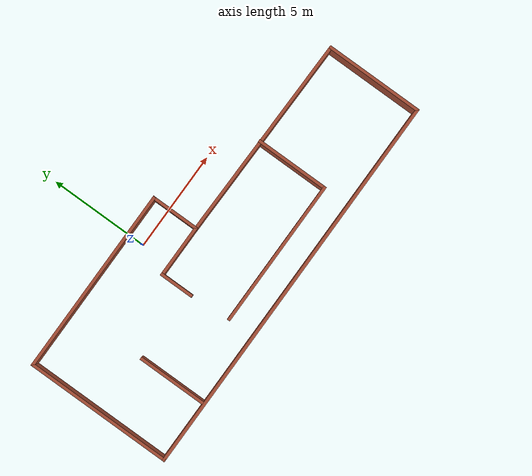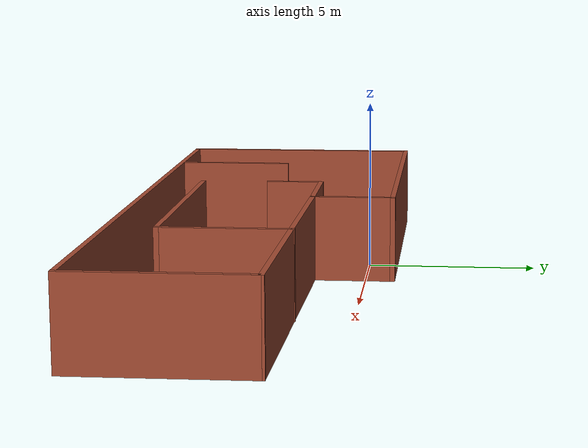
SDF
<?xml version='1.0'?>
<sdf version='1.6'>
  <model name='Hotel_3'>
    <pose frame=''>2.48055 -2.885 0 0 -0 0</pose>
    <link name='Wall_0'>
      <collision name='Wall_0_Collision'>
        <geometry>
          <box>
            <size>1.75 0.15 2.5</size>
          </box>
        </geometry>
        <pose frame=''>0 0 1.25 0 -0 0</pose>
      </collision>
      <visual name='Wall_0_Visual'>
        <pose frame=''>0 0 1.25 0 -0 0</pose>
        <geometry>
          <box>
            <size>1.75 0.15 2.5</size>
          </box>
        </geometry>
        <material>
          <script>
            <uri>file://media/materials/scripts/gazebo.material</uri>
            <name>Gazebo/Bricks</name>
          </script>
          <ambient>1 1 1 1</ambient>
        </material>
        <meta>
          <layer>0</layer>
        </meta>
      </visual>
      <pose frame=''>-3.05055 0.525 0 0 -0 1.5708</pose>
    </link>
    <link name='Wall_1'>
      <collision name='Wall_1_Collision'>
        <geometry>
          <box>
            <size>2.75 0.15 2.5</size>
          </box>
        </geometry>
        <pose frame=''>0 0 1.25 0 -0 0</pose>
      </collision>
      <visual name='Wall_1_Visual'>
        <pose frame=''>0 0 1.25 0 -0 0</pose>
        <geometry>
          <box>
            <size>2.75 0.15 2.5</size>
          </box>
        </geometry>
        <material>
          <script>
            <uri>file://media/materials/scripts/gazebo.material</uri>
            <name>Gazebo/Bricks</name>
          </script>
          <ambient>1 1 1 1</ambient>
        </material>
        <meta>
          <layer>0</layer>
        </meta>
      </visual>
      <pose frame=''>-1.75055 1.325 0 0 -0 0</pose>
    </link>
    <link name='Wall_10'>
      <collision name='Wall_10_Collision'>
        <geometry>
          <box>
            <size>3.75 0.15 2.5</size>
          </box>
        </geometry>
        <pose frame=''>0 0 1.25 0 -0 0</pose>
      </collision>
      <visual name='Wall_10_Visual'>
        <pose frame=''>0 0 1.25 0 -0 0</pose>
        <geometry>
          <box>
            <size>3.75 0.15 2.5</size>
          </box>
        </geometry>
        <material>
          <script>
            <uri>file://media/materials/scripts/gazebo.material</uri>
            <name>Gazebo/Bricks</name>
          </script>
          <ambient>1 1 1 1</ambient>
        </material>
        <meta>
          <layer>0</layer>
        </meta>
      </visual>
      <pose frame=''>4.45924 -0.530568 0 0 -0 -1.5708</pose>
    </link>
    <link name='Wall_11'>
      <collision name='Wall_11_Collision'>
        <geometry>
          <box>
            <size>7.5 0.15 2.5</size>
          </box>
        </geometry>
        <pose frame=''>0 0 1.25 0 -0 0</pose>
      </collision>
      <visual name='Wall_11_Visual'>
        <pose frame=''>0 0 1.25 0 -0 0</pose>
        <geometry>
          <box>
            <size>7.5 0.15 2.5</size>
          </box>
        </geometry>
        <material>
          <script>
            <uri>file://media/materials/scripts/gazebo.material</uri>
            <name>Gazebo/Bricks</name>
          </script>
          <ambient>1 1 1 1</ambient>
        </material>
        <meta>
          <layer>0</layer>
        </meta>
      </visual>
      <pose frame=''>0.784242 -2.33057 0 0 -0 3.14159</pose>
    </link>
    <link name='Wall_13'>
      <collision name='Wall_13_Collision'>
        <geometry>
          <box>
            <size>3.5 0.15 2.5</size>
          </box>
        </geometry>
        <pose frame=''>0 0 1.25 0 -0 0</pose>
      </collision>
      <visual name='Wall_13_Visual'>
        <pose frame=''>0 0 1.25 0 -0 0</pose>
        <geometry>
          <box>
            <size>3.5 0.15 2.5</size>
          </box>
        </geometry>
        <material>
          <script>
            <uri>file://media/materials/scripts/gazebo.material</uri>
            <name>Gazebo/Bricks</name>
          </script>
          <ambient>1 1 1 1</ambient>
        </material>
        <meta>
          <layer>0</layer>
        </meta>
      </visual>
      <pose frame=''>-6.68368 -1.85374 0 0 -0 -1.5708</pose>
    </link>
    <link name='Wall_3'>
      <collision name='Wall_3_Collision'>
        <geometry>
          <box>
            <size>2.5 0.15 2.5</size>
          </box>
        </geometry>
        <pose frame=''>0 0 1.25 0 -0 0</pose>
      </collision>
      <visual name='Wall_3_Visual'>
        <pose frame=''>0 0 1.25 0 -0 0</pose>
        <geometry>
          <box>
            <size>2.5 0.15 2.5</size>
          </box>
        </geometry>
        <material>
          <script>
            <uri>file://media/materials/scripts/gazebo.material</uri>
            <name>Gazebo/Bricks</name>
          </script>
          <ambient>1 1 1 1</ambient>
        </material>
        <meta>
          <layer>0</layer>
        </meta>
      </visual>
      <pose frame=''>-0.450545 2.5 0 0 -0 1.5708</pose>
    </link>
    <link name='Wall_4'>
      <collision name='Wall_4_Collision'>
        <geometry>
          <box>
            <size>9.5 0.15 2.5</size>
          </box>
        </geometry>
        <pose frame=''>0 0 1.25 0 -0 0</pose>
      </collision>
      <visual name='Wall_4_Visual'>
        <pose frame=''>0 0 1.25 0 -0 0</pose>
        <geometry>
          <box>
            <size>9.5 0.15 2.5</size>
          </box>
        </geometry>
        <material>
          <script>
            <uri>file://media/materials/scripts/gazebo.material</uri>
            <name>Gazebo/Bricks</name>
          </script>
          <ambient>1 1 1 1</ambient>
        </material>
        <meta>
          <layer>0</layer>
        </meta>
      </visual>
      <pose frame=''>-5.12554 3.675 0 0 -0 3.14159</pose>
    </link>
    <link name='Wall_5'>
      <collision name='Wall_5_Collision'>
        <geometry>
          <box>
            <size>7.5 0.15 2.5</size>
          </box>
        </geometry>
        <pose frame=''>0 0 1.25 0 -0 0</pose>
      </collision>
      <visual name='Wall_5_Visual'>
        <pose frame=''>0 0 1.25 0 -0 0</pose>
        <geometry>
          <box>
            <size>7.5 0.15 2.5</size>
          </box>
        </geometry>
        <material>
          <script>
            <uri>file://media/materials/scripts/gazebo.material</uri>
            <name>Gazebo/Bricks</name>
          </script>
          <ambient>1 1 1 1</ambient>
        </material>
        <meta>
          <layer>0</layer>
        </meta>
      </visual>
      <pose frame=''>-9.80054 -0 0 0 -0 -1.5708</pose>
    </link>
    <link name='Wall_6'>
      <collision name='Wall_6_Collision'>
        <geometry>
          <box>
            <size>19.75 0.15 2.5</size>
          </box>
        </geometry>
        <pose frame=''>0 0 1.25 0 -0 0</pose>
      </collision>
      <visual name='Wall_6_Visual'>
        <pose frame=''>0 0 1.25 0 -0 0</pose>
        <geometry>
          <box>
            <size>19.75 0.15 2.5</size>
          </box>
        </geometry>
        <material>
          <script>
            <uri>file://media/materials/scripts/gazebo.material</uri>
            <name>Gazebo/Bricks</name>
          </script>
          <ambient>1 1 1 1</ambient>
        </material>
        <meta>
          <layer>0</layer>
        </meta>
      </visual>
      <pose frame=''>-0.000545 -3.675 0 0 -0 0</pose>
    </link>
    <link name='Wall_7'>
      <collision name='Wall_7_Collision'>
        <geometry>
          <box>
            <size>5 0.15 2.5</size>
          </box>
        </geometry>
        <pose frame=''>0 0 1.25 0 -0 0</pose>
      </collision>
      <visual name='Wall_7_Visual'>
        <pose frame=''>0 0 1.25 0 -0 0</pose>
        <geometry>
          <box>
            <size>5 0.15 2.5</size>
          </box>
        </geometry>
        <material>
          <script>
            <uri>file://media/materials/scripts/gazebo.material</uri>
            <name>Gazebo/Bricks</name>
          </script>
          <ambient>1 1 1 1</ambient>
        </material>
        <meta>
          <layer>0</layer>
        </meta>
      </visual>
      <pose frame=''>9.79946 -1.25 0 0 -0 1.5708</pose>
    </link>
    <link name='Wall_8'>
      <collision name='Wall_8_Collision'>
        <geometry>
          <box>
            <size>10.4011 0.15 2.5</size>
          </box>
        </geometry>
        <pose frame=''>0 0 1.25 0 -0 0</pose>
      </collision>
      <visual name='Wall_8_Visual'>
        <pose frame=''>0 0 1.25 0 -0 0</pose>
        <geometry>
          <box>
            <size>10.4011 0.15 2.5</size>
          </box>
        </geometry>
        <material>
          <script>
            <uri>file://media/materials/scripts/gazebo.material</uri>
            <name>Gazebo/Bricks</name>
          </script>
          <ambient>1 1 1 1</ambient>
        </material>
        <meta>
          <layer>0</layer>
        </meta>
      </visual>
      <pose frame=''>4.67446 1.25 0 0 -0 3.12696</pose>
    </link>
    <static>1</static>
  </model>
</sdf>
